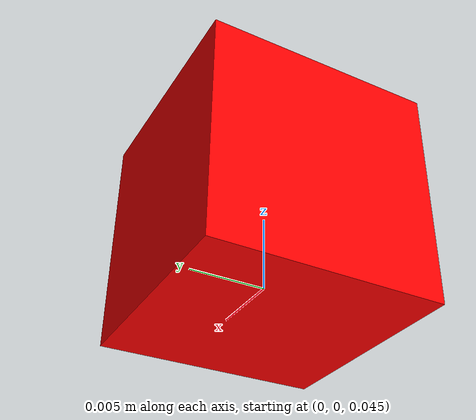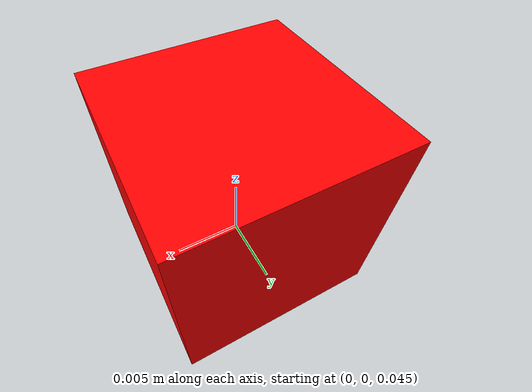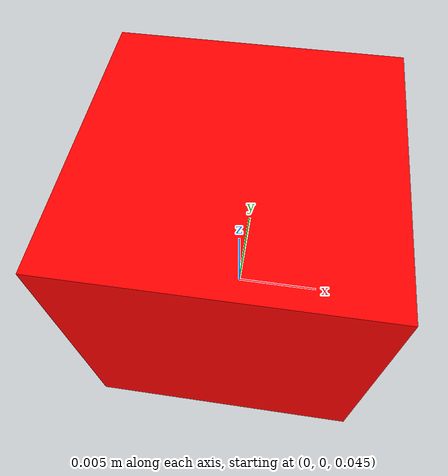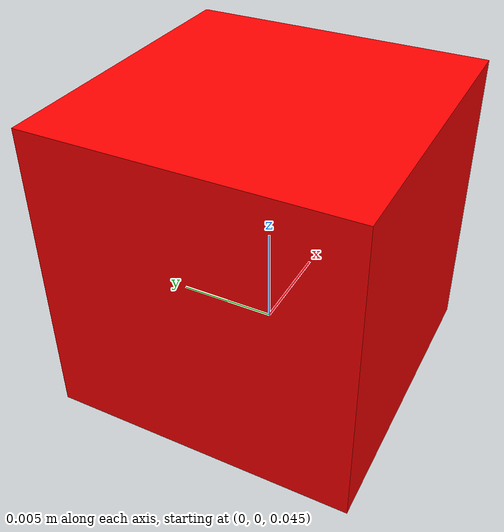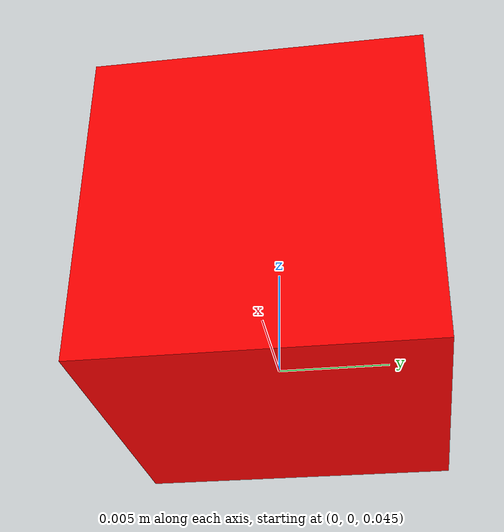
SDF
<?xml version='1.0'?>
<sdf version="1.4">
<model name="red_cube">
  <pose>0 0 0.05 0 0 0</pose>
  <static>false</static>
    <link name="cube">
      <inertial>
        <mass>1.0</mass>
        <inertia> <!-- inertias are tricky to compute -->
          <!-- http://gazebosim.org/tutorials?tut=inertia&cat=build_robot -->
          <ixx>0.083</ixx>       <!-- for a box: ixx = 0.083 * mass * (y*y + z*z) -->
          <ixy>0.0</ixy>         <!-- for a box: ixy = 0 -->
          <ixz>0.0</ixz>         <!-- for a box: ixz = 0 -->
          <iyy>0.083</iyy>       <!-- for a box: iyy = 0.083 * mass * (x*x + z*z) -->
          <iyz>0.0</iyz>         <!-- for a box: iyz = 0 -->
          <izz>0.083</izz>       <!-- for a box: izz = 0.083 * mass * (x*x + y*y) -->
        </inertia>
      </inertial>
      <collision name="box">
        <geometry>
          <box>
            <size>.015 .015 .015</size>
          </box>
        </geometry>
        <surface>
            <friction>
              <ode>
                <mu>100000.0</mu>
                <mu2>100000.0</mu2>
                <slip1>0.0</slip1>
                <slip2>0.0</slip2>
              </ode>
            </friction>
          </surface>
      </collision>
      <visual name="red_cube">
        <geometry>
          <box>
            <size>.015 .015 .015</size>
          </box>
        </geometry>
	 <material>
    		<ambient>1 0 0 1</ambient>
    		<diffuse>1 0 0 1</diffuse>
    		<specular>0.1 0.1 0.1 1</specular>
    		<emissive>0 0 0 0</emissive>
  	</material>
      </visual>
    </link>
  </model>
</sdf>
